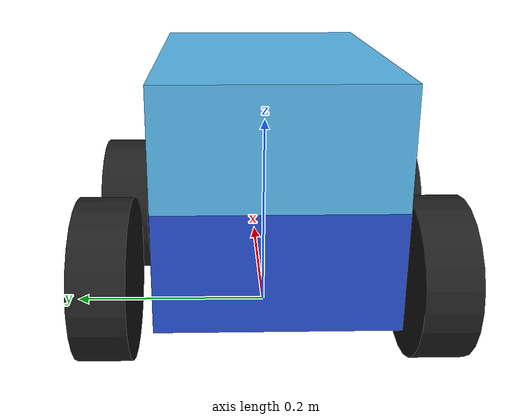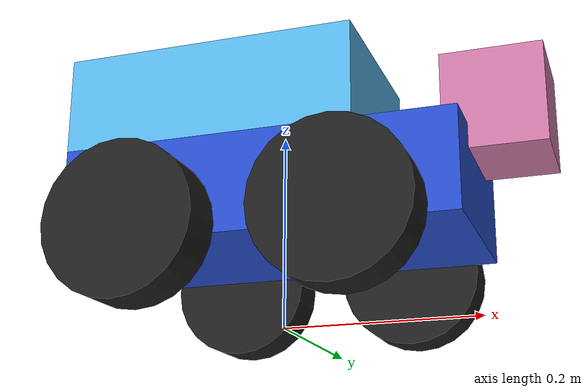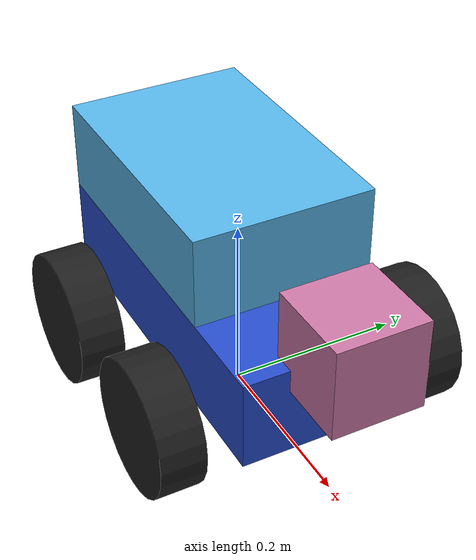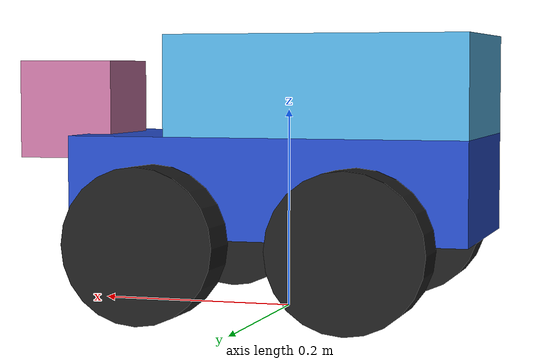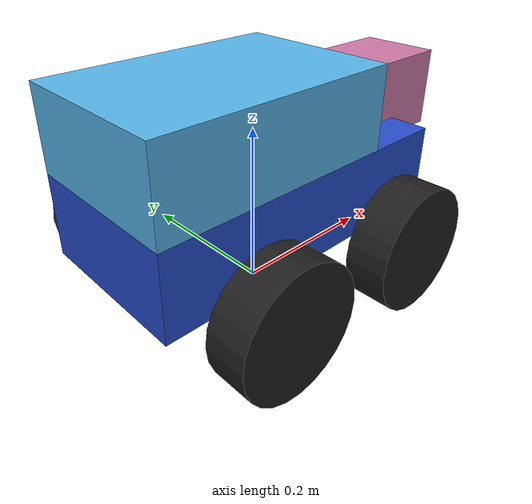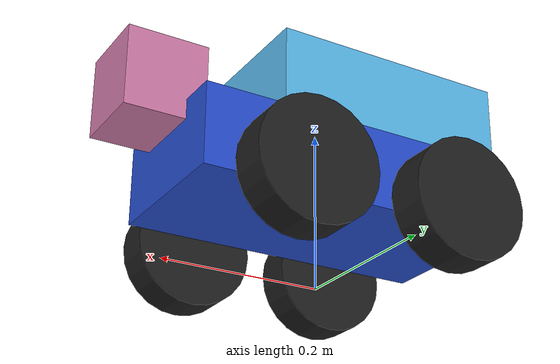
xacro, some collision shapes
<?xml version="1.0"?>
<robot xmlns:xacro="http://www.ros.org/wiki/xacro" name="my_robot">

  <link name="base_link">
  <inertial>
    <origin xyz="0 0 0.125" />
    <mass value="5" />
    <inertia  ixx="0.1" ixy="0.0"  ixz="0.0"  iyy="0.1"  iyz="0.0"  izz="0.1" />
  </inertial>
  <visual>
    <origin xyz="0 0 0.125"/>
    <geometry>
      <box size="0.4 0.2 0.1" />
    </geometry>
  </visual>
  <collision>
    <origin xyz="0 0 0.125"/>
    <geometry>
      <box size="0.4 0.2 0.1" />
    </geometry>
  </collision>
  </link>

  <link name="box">
  <inertial>
    <origin xyz="0 0 0" />
    <mass value="5" />
    <inertia  ixx="0.1" ixy="0.0"  ixz="0.0"  iyy="0.1"  iyz="0.0"  izz="0.1" />
  </inertial>
  <visual>
    <origin xyz="0 0 0"/>
    <geometry>
      <box size="0.3 0.2 0.1" />
    </geometry>
  </visual>
  <collision>
    <origin xyz="0 0 0"/>
    <geometry>
      <box size="0.3 0.2 0.1" />
    </geometry>
  </collision>
  </link>

  <joint name="base_link_box" type="fixed">
    <parent link="base_link"/>
    <child link="box"/>
    <axis xyz="0 0 0"/>
    <origin xyz="-0.05 0 0.225"/>
  </joint>

  <gazebo reference="base_link">
    <material>Gazebo/Blue</material>
  </gazebo>

  <link name="right_wheel">
  <inertial>
    <origin rpy="1.5707963267948966 0 0" xyz="0 0 0" />
    <mass value="0.1" />
    <inertia  ixx="0.01" ixy="0.0"  ixz="0.0"  iyy="0.01"  iyz="0.0"  izz="0.01" />
  </inertial>
  <visual>
    <origin rpy="1.5707963267948966 0 0" xyz="0 0 0"/>
    <geometry>
      <cylinder length="0.05" radius="0.075"/>
    </geometry>
  </visual>
  <collision>
    <origin rpy="1.5707963267948966 0 0" xyz="0 0 0"/>
    <geometry>
      <cylinder length="0.05" radius="0.075"/>
    </geometry>
  </collision>
  </link>

  <gazebo reference="right_wheel">
    <material>Gazebo/Black</material>
  </gazebo>

  <joint name="base_link_right_wheel" type="continuous">
    <parent link="base_link"/>
    <child link="right_wheel"/>
    <axis xyz="0 1 0"/>
    <origin xyz="0.1 -0.15 0.075"/>
  </joint>

  <transmission name="T_base_link_right_wheel">
    <type>transmission_interface/SimpleTransmission</type>
    <actuator name="motor_1">
      <mechanicalReduction>1</mechanicalReduction>
      <hardwareInterface>hardware_interface/VelocityJointInterface</hardwareInterface>
    </actuator>
    <joint name="base_link_right_wheel">
      <hardwareInterface>hardware_interface/VelocityJointInterface</hardwareInterface>
    </joint>
  </transmission>

  <link name="left_wheel">
  <inertial>
    <origin rpy="1.5707963267948966 0 0" xyz="0 0 0" />
    <mass value="0.1" />
    <inertia  ixx="0.01" ixy="0.0"  ixz="0.0"  iyy="0.01"  iyz="0.0"  izz="0.01" />
  </inertial>
  <visual>
    <origin rpy="1.5707963267948966 0 0" xyz="0 0 0"/>
    <geometry>
      <cylinder length="0.05" radius="0.075"/>
    </geometry>
  </visual>
  <collision>
    <origin rpy="1.5707963267948966 0 0" xyz="0 0 0"/>
    <geometry>
      <cylinder length="0.05" radius="0.075"/>
    </geometry>
  </collision>
  </link>

  <gazebo reference="left_wheel">
    <material>Gazebo/Black</material>
  </gazebo>

  <joint name="base_link_left_wheel" type="continuous">
    <parent link="base_link"/>
    <child link="left_wheel"/>
    <axis xyz="0 1 0"/>
    <origin xyz="0.1 0.15 0.075"/>
  </joint>

  <transmission name="T_base_link_left_wheel">
    <type>transmission_interface/SimpleTransmission</type>
    <actuator name="motor_2">
      <mechanicalReduction>1</mechanicalReduction>
      <hardwareInterface>hardware_interface/VelocityJointInterface</hardwareInterface>
    </actuator>
    <joint name="base_link_left_wheel">
      <hardwareInterface>hardware_interface/VelocityJointInterface</hardwareInterface>
    </joint>
  </transmission>

  <link name="right_back_wheel">
  <inertial>
    <origin rpy="1.5707963267948966 0 0" xyz="0 0 0" />
    <mass value="0.1" />
    <inertia  ixx="0.01" ixy="0.0"  ixz="0.0"  iyy="0.01"  iyz="0.0"  izz="0.01" />
  </inertial>
  <visual>
    <origin rpy="1.5707963267948966 0 0" xyz="0 0 0"/>
    <geometry>
      <cylinder length="0.05" radius="0.075"/>
    </geometry>
  </visual>
  <collision>
    <origin rpy="1.5707963267948966 0 0" xyz="0 0 0"/>
    <geometry>
      <cylinder length="0.05" radius="0.075"/>
    </geometry>
  </collision>
  </link>

  <gazebo reference="right_back_wheel">
    <material>Gazebo/Black</material>
  </gazebo>

  <joint name="base_link_right_back_wheel" type="continuous">
    <parent link="base_link"/>
    <child link="right_back_wheel"/>
    <axis xyz="0 1 0"/>
    <origin xyz="-0.1 -0.15 0.075"/>
  </joint>

  <transmission name="T_base_link_right_back_wheel">
    <type>transmission_interface/SimpleTransmission</type>
    <actuator name="motor_3">
      <mechanicalReduction>1</mechanicalReduction>
      <hardwareInterface>hardware_interface/VelocityJointInterface</hardwareInterface>
    </actuator>
    <joint name="base_link_right_back_wheel">
      <hardwareInterface>hardware_interface/VelocityJointInterface</hardwareInterface>
    </joint>
  </transmission>

  <link name="left_back_wheel">
  <inertial>
    <origin rpy="1.5707963267948966 0 0" xyz="0 0 0" />
    <mass value="0.1" />
    <inertia  ixx="0.01" ixy="0.0"  ixz="0.0"  iyy="0.01"  iyz="0.0"  izz="0.01" />
  </inertial>
  <visual>
    <origin rpy="1.5707963267948966 0 0" xyz="0 0 0"/>
    <geometry>
      <cylinder length="0.05" radius="0.075"/>
    </geometry>
  </visual>
  <collision>
    <origin rpy="1.5707963267948966 0 0" xyz="0 0 0"/>
    <geometry>
      <cylinder length="0.05" radius="0.075"/>
    </geometry>
  </collision>
  </link>

  <gazebo reference="left_back_wheel">
    <material>Gazebo/Black</material>
  </gazebo>

  <joint name="base_link_left_back_wheel" type="continuous">
    <parent link="base_link"/>
    <child link="left_back_wheel"/>
    <axis xyz="0 1 0"/>
    <origin xyz="-0.1 0.15 0.075"/>
  </joint>

  <transmission name="T_base_link_left_back_wheel">
    <type>transmission_interface/SimpleTransmission</type>
    <actuator name="motor_4">
      <mechanicalReduction>1</mechanicalReduction>
      <hardwareInterface>hardware_interface/VelocityJointInterface</hardwareInterface>
    </actuator>
    <joint name="base_link_left_back_wheel">
      <hardwareInterface>hardware_interface/VelocityJointInterface</hardwareInterface>
    </joint>
  </transmission>

<gazebo>
  <plugin name="differential_drive_controller" filename="libgazebo_ros_diff_drive.so">
    <alwaysOn>true</alwaysOn>
    <updateRate>10</updateRate>
    <leftJoint>base_link_left_wheel</leftJoint>
    <rightJoint>base_link_right_wheel</rightJoint>
    <wheelSeparation>0.3</wheelSeparation>
    <wheelDiameter>0.15</wheelDiameter>
    <torque>1.41</torque>
    <commandTopic>cmd_vel</commandTopic>
    <odometryTopic>odom</odometryTopic>
    <odometryFrame>odom</odometryFrame>
    <robotBaseFrame>base_link</robotBaseFrame>
    <publishWheelJointState>true</publishWheelJointState>
    <legacyMode>false</legacyMode>
  </plugin>
</gazebo>

  <!-- Laser  -->

  <xacro:include filename="$(find mcl_pi_gazebo)/urdf/hokuyo.xacro"/>
  <xacro:laser name="base_laser" parent="base_link" xyz="0.225 0 0.2" rpy="0 0 0" meshes="package://gazebo_plugins/test/multi_robot_scenario/meshes/laser"/>

</robot>

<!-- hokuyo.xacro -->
<robot xmlns:xacro="http://www.ros.org/wiki/xacro">

<!-- Front Laser -->
<xacro:macro name="laser" params="name parent xyz rpy meshes" >

  <joint name="${parent}_${name}_joint" type="fixed">
      <axis xyz="0 0 1" />
      <origin xyz="${xyz}" rpy="${rpy}"/>
      <parent link="${parent}"/>
      <child link="${name}"/>
    </joint>

    <link name="${name}">
      <collision>
        <origin xyz="0 0 0" rpy="0 0 0"/>
        <geometry>
          <box size="0.1 0.1 0.1"/>
        </geometry>
      </collision>
      <visual>
        <origin xyz="0 0 0" rpy="0 0 0"/>
        <geometry>
          <mesh filename="${meshes}/hokuyo.dae"/>
        </geometry>
      </visual>
      <inertial>
        <mass value="1e-5" />
        <origin xyz="0 0 0" rpy="0 0 0"/>
        <inertia ixx="1e-6" ixy="0" ixz="0" iyy="1e-6" iyz="0" izz="1e-6" />
      </inertial>
    </link>

    <gazebo reference="${name}">
        <sensor name="laser" type="ray">
        <pose>0 0 0 0 0 0</pose>
          <ray>
            <scan>
              <horizontal>
                <!-- The URG-04LX-UG01  has  683 steps with 0.35139 Degree resolution -->
                <resolution>1</resolution>
                <max_angle>2.0944</max_angle> <!-- 120 Degree -->
                <min_angle>-2.0944</min_angle> <!-- -120 Degree -->
                <samples>683</samples>
              </horizontal>
            </scan>
            <range>
              <min>0.08</min>
              <max>5</max>
              <resolution>0.01</resolution>
            </range>
          </ray>

          <plugin name="laser" filename="libgazebo_ros_laser.so" >
            <topicName>scan</topicName>
            <frameName>base_laser</frameName>
          </plugin>

          <always_on>1</always_on>
          <update_rate>30</update_rate>
          <visualize>true</visualize>
        </sensor>
    </gazebo>
</xacro:macro>

</robot>
